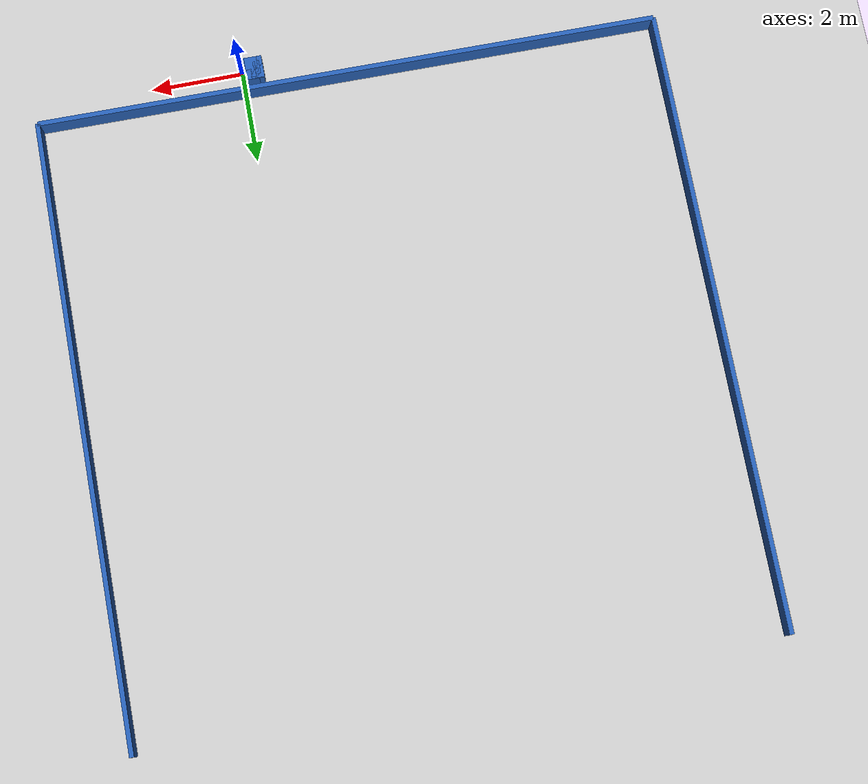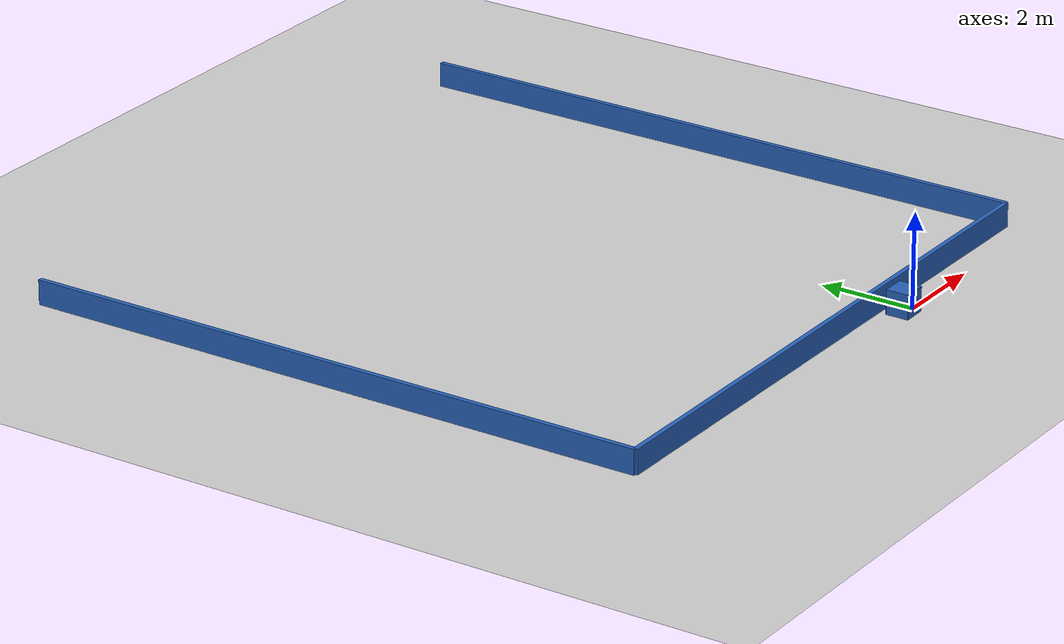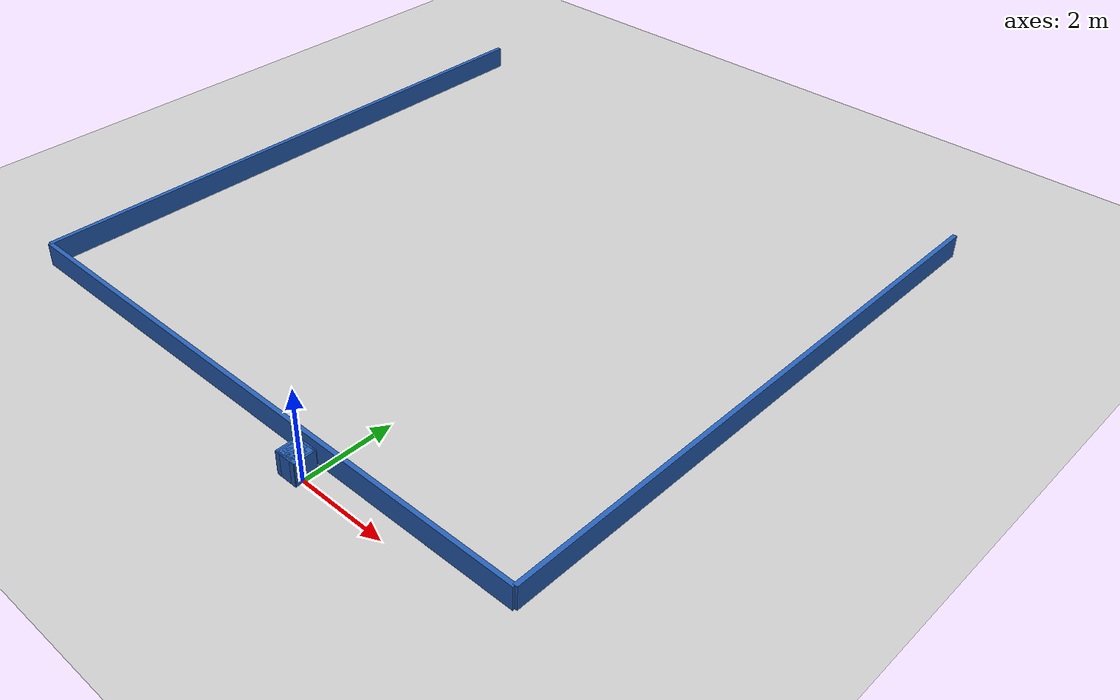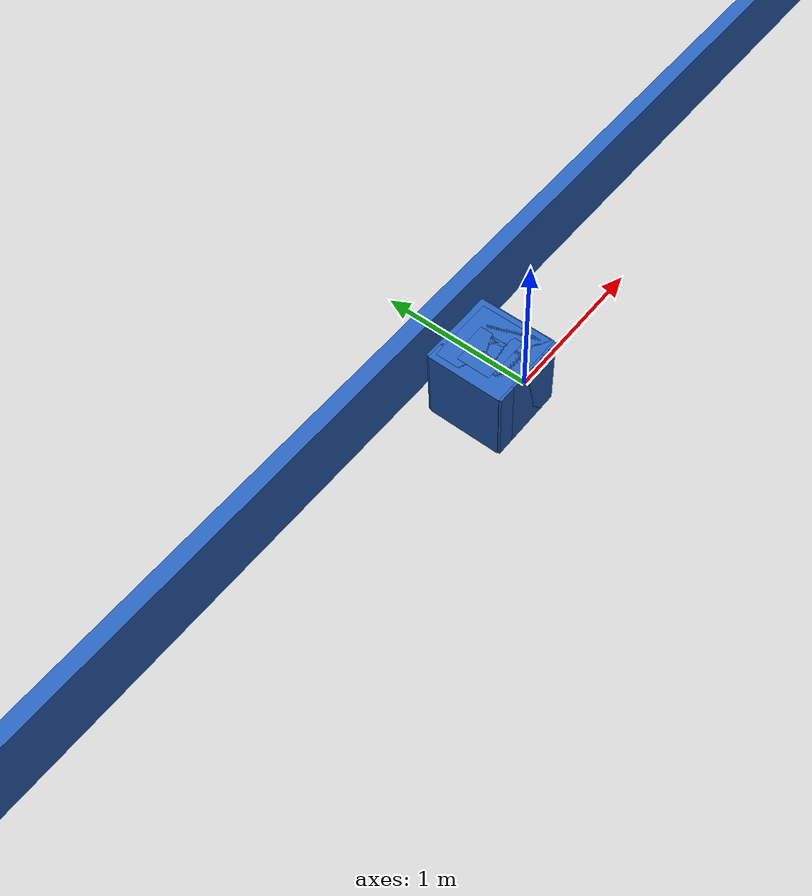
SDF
<?xml version="1.0" ?>
    <sdf version="1.5">
      <world name="default">
        <!-- A global light source -->
        <include>
          <uri>model://sun</uri>
        </include>
        <!-- A ground plane -->
        <include>
          <uri>model://ground_plane</uri>
        </include>

    <model name='libopen_space_final_T2B_111_18'>
      <static>1</static>
      <pose frame=''>-0.225000 0.075000 0.000000 0.000000 0.000000 0.000000</pose>
      <link name='link'>
        <inertial>
          <mass>1</mass>
          <inertia>
            <ixx>0.145833</ixx>
            <ixy>0</ixy>
            <ixz>0</ixz>
            <iyy>0.145833</iyy>
            <iyz>0</iyz>
            <izz>0.125</izz>
          </inertia>
        </inertial>
        <collision name='collision'>
          <geometry>
            <box>
              <size>0.42 0.43 1</size>
            </box>
          </geometry>
          <max_contacts>10</max_contacts>
          <surface>
            <contact>
              <ode/>
            </contact>
            <bounce/>
            <friction>
              <torsional>
                <ode/>
              </torsional>
              <ode/>
            </friction>
          </surface>
        </collision>
        <visual name='visual'>
          <geometry>
            <box>
              <size>0.42 0.43 1</size>
            </box>
          </geometry>
	    <material>
              <ambient>0.152000 0.379000 0.720000 1</ambient>
	      <diffuse>0.152000 0.379000 0.720000 1</diffuse>
          </material>
          <material>
            <script>
              <name>Gazebo/Grey</name>
              <uri>file://media/materials/scripts/gazebo.material</uri>
            </script>
          </material>
        </visual>
        <self_collide>0</self_collide>
        <kinematic>0</kinematic>
        <gravity>1</gravity>
      </link>
      <plugin name='libopen_space_final_T2B_111_18' filename='libopen_space_final_T2B_111_18.so'/>
    </model>

    <model name='libopen_space_final_T2B_120_45'>
      <static>1</static>
      <pose frame=''>-0.225000 0.075000 0.000000 0.000000 0.000000 0.000000</pose>
      <link name='link'>
        <inertial>
          <mass>1</mass>
          <inertia>
            <ixx>0.145833</ixx>
            <ixy>0</ixy>
            <ixz>0</ixz>
            <iyy>0.145833</iyy>
            <iyz>0</iyz>
            <izz>0.125</izz>
          </inertia>
        </inertial>
        <collision name='collision'>
          <geometry>
            <box>
              <size>0.17 0.27 1</size>
            </box>
          </geometry>
          <max_contacts>10</max_contacts>
          <surface>
            <contact>
              <ode/>
            </contact>
            <bounce/>
            <friction>
              <torsional>
                <ode/>
              </torsional>
              <ode/>
            </friction>
          </surface>
        </collision>
        <visual name='visual'>
          <geometry>
            <box>
              <size>0.17 0.27 1</size>
            </box>
          </geometry>
	    <material>
              <ambient>0.152000 0.379000 0.720000 1</ambient>
	      <diffuse>0.152000 0.379000 0.720000 1</diffuse>
          </material>
          <material>
            <script>
              <name>Gazebo/Grey</name>
              <uri>file://media/materials/scripts/gazebo.material</uri>
            </script>
          </material>
        </visual>
        <self_collide>0</self_collide>
        <kinematic>0</kinematic>
        <gravity>1</gravity>
      </link>
      <plugin name='libopen_space_final_T2B_120_45' filename='libopen_space_final_T2B_120_45.so'/>
    </model>

    <model name='libopen_space_final_T2B_80_70'>
      <static>1</static>
      <pose frame=''>-0.225000 0.075000 0.000000 0.000000 0.000000 0.000000</pose>
      <link name='link'>
        <inertial>
          <mass>1</mass>
          <inertia>
            <ixx>0.145833</ixx>
            <ixy>0</ixy>
            <ixz>0</ixz>
            <iyy>0.145833</iyy>
            <iyz>0</iyz>
            <izz>0.125</izz>
          </inertia>
        </inertial>
        <collision name='collision'>
          <geometry>
            <box>
              <size>0.14 0.40 1</size>
            </box>
          </geometry>
          <max_contacts>10</max_contacts>
          <surface>
            <contact>
              <ode/>
            </contact>
            <bounce/>
            <friction>
              <torsional>
                <ode/>
              </torsional>
              <ode/>
            </friction>
          </surface>
        </collision>
        <visual name='visual'>
          <geometry>
            <box>
              <size>0.14 0.40 1</size>
            </box>
          </geometry>
	    <material>
              <ambient>0.152000 0.379000 0.720000 1</ambient>
	      <diffuse>0.152000 0.379000 0.720000 1</diffuse>
          </material>
          <material>
            <script>
              <name>Gazebo/Grey</name>
              <uri>file://media/materials/scripts/gazebo.material</uri>
            </script>
          </material>
        </visual>
        <self_collide>0</self_collide>
        <kinematic>0</kinematic>
        <gravity>1</gravity>
      </link>
      <plugin name='libopen_space_final_T2B_80_70' filename='libopen_space_final_T2B_80_70.so'/>
    </model>

    <model name='libopen_space_final_T2B_109_60'>
      <static>1</static>
      <pose frame=''>-0.225000 0.075000 0.000000 0.000000 0.000000 0.000000</pose>
      <link name='link'>
        <inertial>
          <mass>1</mass>
          <inertia>
            <ixx>0.145833</ixx>
            <ixy>0</ixy>
            <ixz>0</ixz>
            <iyy>0.145833</iyy>
            <iyz>0</iyz>
            <izz>0.125</izz>
          </inertia>
        </inertial>
        <collision name='collision'>
          <geometry>
            <box>
              <size>0.50 0.47 1</size>
            </box>
          </geometry>
          <max_contacts>10</max_contacts>
          <surface>
            <contact>
              <ode/>
            </contact>
            <bounce/>
            <friction>
              <torsional>
                <ode/>
              </torsional>
              <ode/>
            </friction>
          </surface>
        </collision>
        <visual name='visual'>
          <geometry>
            <box>
              <size>0.50 0.47 1</size>
            </box>
          </geometry>
	    <material>
              <ambient>0.152000 0.379000 0.720000 1</ambient>
	      <diffuse>0.152000 0.379000 0.720000 1</diffuse>
          </material>
          <material>
            <script>
              <name>Gazebo/Grey</name>
              <uri>file://media/materials/scripts/gazebo.material</uri>
            </script>
          </material>
        </visual>
        <self_collide>0</self_collide>
        <kinematic>0</kinematic>
        <gravity>1</gravity>
      </link>
      <plugin name='libopen_space_final_T2B_109_60' filename='libopen_space_final_T2B_109_60.so'/>
    </model>

    <model name='libopen_space_final_T2B_105_8'>
      <static>1</static>
      <pose frame=''>-0.225000 0.075000 0.000000 0.000000 0.000000 0.000000</pose>
      <link name='link'>
        <inertial>
          <mass>1</mass>
          <inertia>
            <ixx>0.145833</ixx>
            <ixy>0</ixy>
            <ixz>0</ixz>
            <iyy>0.145833</iyy>
            <iyz>0</iyz>
            <izz>0.125</izz>
          </inertia>
        </inertial>
        <collision name='collision'>
          <geometry>
            <box>
              <size>0.27 0.50 1</size>
            </box>
          </geometry>
          <max_contacts>10</max_contacts>
          <surface>
            <contact>
              <ode/>
            </contact>
            <bounce/>
            <friction>
              <torsional>
                <ode/>
              </torsional>
              <ode/>
            </friction>
          </surface>
        </collision>
        <visual name='visual'>
          <geometry>
            <box>
              <size>0.27 0.50 1</size>
            </box>
          </geometry>
	    <material>
              <ambient>0.152000 0.379000 0.720000 1</ambient>
	      <diffuse>0.152000 0.379000 0.720000 1</diffuse>
          </material>
          <material>
            <script>
              <name>Gazebo/Grey</name>
              <uri>file://media/materials/scripts/gazebo.material</uri>
            </script>
          </material>
        </visual>
        <self_collide>0</self_collide>
        <kinematic>0</kinematic>
        <gravity>1</gravity>
      </link>
      <plugin name='libopen_space_final_T2B_105_8' filename='libopen_space_final_T2B_105_8.so'/>
    </model>

    <model name='libopen_space_final_T2B_123_20'>
      <static>1</static>
      <pose frame=''>-0.225000 0.075000 0.000000 0.000000 0.000000 0.000000</pose>
      <link name='link'>
        <inertial>
          <mass>1</mass>
          <inertia>
            <ixx>0.145833</ixx>
            <ixy>0</ixy>
            <ixz>0</ixz>
            <iyy>0.145833</iyy>
            <iyz>0</iyz>
            <izz>0.125</izz>
          </inertia>
        </inertial>
        <collision name='collision'>
          <geometry>
            <box>
              <size>0.49 0.50 1</size>
            </box>
          </geometry>
          <max_contacts>10</max_contacts>
          <surface>
            <contact>
              <ode/>
            </contact>
            <bounce/>
            <friction>
              <torsional>
                <ode/>
              </torsional>
              <ode/>
            </friction>
          </surface>
        </collision>
        <visual name='visual'>
          <geometry>
            <box>
              <size>0.49 0.50 1</size>
            </box>
          </geometry>
	    <material>
              <ambient>0.152000 0.379000 0.720000 1</ambient>
	      <diffuse>0.152000 0.379000 0.720000 1</diffuse>
          </material>
          <material>
            <script>
              <name>Gazebo/Grey</name>
              <uri>file://media/materials/scripts/gazebo.material</uri>
            </script>
          </material>
        </visual>
        <self_collide>0</self_collide>
        <kinematic>0</kinematic>
        <gravity>1</gravity>
      </link>
      <plugin name='libopen_space_final_T2B_123_20' filename='libopen_space_final_T2B_123_20.so'/>
    </model>

    <model name='libopen_space_final_T2B_115_72'>
      <static>1</static>
      <pose frame=''>-0.225000 0.075000 0.000000 0.000000 0.000000 0.000000</pose>
      <link name='link'>
        <inertial>
          <mass>1</mass>
          <inertia>
            <ixx>0.145833</ixx>
            <ixy>0</ixy>
            <ixz>0</ixz>
            <iyy>0.145833</iyy>
            <iyz>0</iyz>
            <izz>0.125</izz>
          </inertia>
        </inertial>
        <collision name='collision'>
          <geometry>
            <box>
              <size>0.33 0.21 1</size>
            </box>
          </geometry>
          <max_contacts>10</max_contacts>
          <surface>
            <contact>
              <ode/>
            </contact>
            <bounce/>
            <friction>
              <torsional>
                <ode/>
              </torsional>
              <ode/>
            </friction>
          </surface>
        </collision>
        <visual name='visual'>
          <geometry>
            <box>
              <size>0.33 0.21 1</size>
            </box>
          </geometry>
	    <material>
              <ambient>0.152000 0.379000 0.720000 1</ambient>
	      <diffuse>0.152000 0.379000 0.720000 1</diffuse>
          </material>
          <material>
            <script>
              <name>Gazebo/Grey</name>
              <uri>file://media/materials/scripts/gazebo.material</uri>
            </script>
          </material>
        </visual>
        <self_collide>0</self_collide>
        <kinematic>0</kinematic>
        <gravity>1</gravity>
      </link>
      <plugin name='libopen_space_final_T2B_115_72' filename='libopen_space_final_T2B_115_72.so'/>
    </model>

    <model name='libopen_space_final_T2B_91_57'>
      <static>1</static>
      <pose frame=''>-0.225000 0.075000 0.000000 0.000000 0.000000 0.000000</pose>
      <link name='link'>
        <inertial>
          <mass>1</mass>
          <inertia>
            <ixx>0.145833</ixx>
            <ixy>0</ixy>
            <ixz>0</ixz>
            <iyy>0.145833</iyy>
            <iyz>0</iyz>
            <izz>0.125</izz>
          </inertia>
        </inertial>
        <collision name='collision'>
          <geometry>
            <box>
              <size>0.35 0.30 1</size>
            </box>
          </geometry>
          <max_contacts>10</max_contacts>
          <surface>
            <contact>
              <ode/>
            </contact>
            <bounce/>
            <friction>
              <torsional>
                <ode/>
              </torsional>
              <ode/>
            </friction>
          </surface>
        </collision>
        <visual name='visual'>
          <geometry>
            <box>
              <size>0.35 0.30 1</size>
            </box>
          </geometry>
	    <material>
              <ambient>0.152000 0.379000 0.720000 1</ambient>
	      <diffuse>0.152000 0.379000 0.720000 1</diffuse>
          </material>
          <material>
            <script>
              <name>Gazebo/Grey</name>
              <uri>file://media/materials/scripts/gazebo.material</uri>
            </script>
          </material>
        </visual>
        <self_collide>0</self_collide>
        <kinematic>0</kinematic>
        <gravity>1</gravity>
      </link>
      <plugin name='libopen_space_final_T2B_91_57' filename='libopen_space_final_T2B_91_57.so'/>
    </model>

    <model name='libopen_space_final_T2B_129_92'>
      <static>1</static>
      <pose frame=''>-0.225000 0.075000 0.000000 0.000000 0.000000 0.000000</pose>
      <link name='link'>
        <inertial>
          <mass>1</mass>
          <inertia>
            <ixx>0.145833</ixx>
            <ixy>0</ixy>
            <ixz>0</ixz>
            <iyy>0.145833</iyy>
            <iyz>0</iyz>
            <izz>0.125</izz>
          </inertia>
        </inertial>
        <collision name='collision'>
          <geometry>
            <box>
              <size>0.12 0.40 1</size>
            </box>
          </geometry>
          <max_contacts>10</max_contacts>
          <surface>
            <contact>
              <ode/>
            </contact>
            <bounce/>
            <friction>
              <torsional>
                <ode/>
              </torsional>
              <ode/>
            </friction>
          </surface>
        </collision>
        <visual name='visual'>
          <geometry>
            <box>
              <size>0.12 0.40 1</size>
            </box>
          </geometry>
	    <material>
              <ambient>0.152000 0.379000 0.720000 1</ambient>
	      <diffuse>0.152000 0.379000 0.720000 1</diffuse>
          </material>
          <material>
            <script>
              <name>Gazebo/Grey</name>
              <uri>file://media/materials/scripts/gazebo.material</uri>
            </script>
          </material>
        </visual>
        <self_collide>0</self_collide>
        <kinematic>0</kinematic>
        <gravity>1</gravity>
      </link>
      <plugin name='libopen_space_final_T2B_129_92' filename='libopen_space_final_T2B_129_92.so'/>
    </model>

    <model name='libopen_space_final_T2B_57_10'>
      <static>1</static>
      <pose frame=''>-0.225000 0.075000 0.000000 0.000000 0.000000 0.000000</pose>
      <link name='link'>
        <inertial>
          <mass>1</mass>
          <inertia>
            <ixx>0.145833</ixx>
            <ixy>0</ixy>
            <ixz>0</ixz>
            <iyy>0.145833</iyy>
            <iyz>0</iyz>
            <izz>0.125</izz>
          </inertia>
        </inertial>
        <collision name='collision'>
          <geometry>
            <box>
              <size>0.27 0.22 1</size>
            </box>
          </geometry>
          <max_contacts>10</max_contacts>
          <surface>
            <contact>
              <ode/>
            </contact>
            <bounce/>
            <friction>
              <torsional>
                <ode/>
              </torsional>
              <ode/>
            </friction>
          </surface>
        </collision>
        <visual name='visual'>
          <geometry>
            <box>
              <size>0.27 0.22 1</size>
            </box>
          </geometry>
	    <material>
              <ambient>0.152000 0.379000 0.720000 1</ambient>
	      <diffuse>0.152000 0.379000 0.720000 1</diffuse>
          </material>
          <material>
            <script>
              <name>Gazebo/Grey</name>
              <uri>file://media/materials/scripts/gazebo.material</uri>
            </script>
          </material>
        </visual>
        <self_collide>0</self_collide>
        <kinematic>0</kinematic>
        <gravity>1</gravity>
      </link>
      <plugin name='libopen_space_final_T2B_57_10' filename='libopen_space_final_T2B_57_10.so'/>
    </model>

        <model name='bottom_wall'>
          <static>1</static>
          <pose frame=''>-2.25 0.5 0.000000 0.000000 0.000000 1.57079632</pose>
          <link name='link'>
            <inertial>
            <mass>1</mass>
            <inertia>
              <ixx>0.145833</ixx>
              <ixy>0</ixy>
              <ixz>0</ixz>
              <iyy>0.145833</iyy>
              <iyz>0</iyz>
              <izz>0.125</izz>
            </inertia>
            </inertial>
            <collision name='collision'>
            <geometry>
              <box>
              <size>0.1 13.5 1</size>
              </box>
            </geometry>
            <max_contacts>10</max_contacts>
            <surface>
              <contact>
              <ode/>
              </contact>
              <bounce/>
              <friction>
              <torsional>
                <ode/>
              </torsional>
              <ode/>
              </friction>
            </surface>
            </collision>
            <visual name='visual'>
            <geometry>
              <box>
              <size>0.1 13.5 1</size>
              </box>
            </geometry>
            <material>
              <ambient>0.152000 0.379000 0.720000 1</ambient>
            <diffuse>0.152000 0.379000 0.720000 1</diffuse>
            </material>
            <material>
              <script>
              <name>Gazebo/Grey</name>
              <uri>file://media/materials/scripts/gazebo.material</uri>
              </script>
            </material>
            </visual>
            <self_collide>0</self_collide>
            <kinematic>0</kinematic>
            <gravity>1</gravity>
          </link>
        </model>

        <model name='left_wall'>
          <static>1</static>
          <pose frame=''>-9 7.25 0.000000 0.000000 0.000000 0.000000</pose>
          <link name='link'>
            <inertial>
            <mass>1</mass>
            <inertia>
              <ixx>0.145833</ixx>
              <ixy>0</ixy>
              <ixz>0</ixz>
              <iyy>0.145833</iyy>
              <iyz>0</iyz>
              <izz>0.125</izz>
            </inertia>
            </inertial>
            <collision name='collision'>
            <geometry>
              <box>
              <size>0.1 13.5 1</size>
              </box>
            </geometry>
            <max_contacts>10</max_contacts>
            <surface>
              <contact>
              <ode/>
              </contact>
              <bounce/>
              <friction>
              <torsional>
                <ode/>
              </torsional>
              <ode/>
              </friction>
            </surface>
            </collision>
            <visual name='visual'>
            <geometry>
              <box>
              <size>0.1 13.5 1</size>
              </box>
            </geometry>
            <material>
              <ambient>0.152000 0.379000 0.720000 1</ambient>
            <diffuse>0.152000 0.379000 0.720000 1</diffuse>
            </material>
            <material>
              <script>
              <name>Gazebo/Grey</name>
              <uri>file://media/materials/scripts/gazebo.material</uri>
              </script>
            </material>
            </visual>
            <self_collide>0</self_collide>
            <kinematic>0</kinematic>
            <gravity>1</gravity>
          </link>
        </model>

        <model name='right_wall'>
          <static>1</static>
          <pose frame=''>4.5 7.25 0.000000 0.000000 0.000000 0.000000</pose>
          <link name='link'>
            <inertial>
            <mass>1</mass>
            <inertia>
              <ixx>0.145833</ixx>
              <ixy>0</ixy>
              <ixz>0</ixz>
              <iyy>0.145833</iyy>
              <iyz>0</iyz>
              <izz>0.125</izz>
            </inertia>
            </inertial>
            <collision name='collision'>
            <geometry>
              <box>
              <size>0.1 13.5 1</size>
              </box>
            </geometry>
            <max_contacts>10</max_contacts>
            <surface>
              <contact>
              <ode/>
              </contact>
              <bounce/>
              <friction>
              <torsional>
                <ode/>
              </torsional>
              <ode/>
              </friction>
            </surface>
            </collision>
            <visual name='visual'>
            <geometry>
              <box>
              <size>0.1 13.5 1</size>
              </box>
            </geometry>
            <material>
              <ambient>0.152000 0.379000 0.720000 1</ambient>
            <diffuse>0.152000 0.379000 0.720000 1</diffuse>
            </material>
            <material>
              <script>
              <name>Gazebo/Grey</name>
              <uri>file://media/materials/scripts/gazebo.material</uri>
              </script>
            </material>
            </visual>
            <self_collide>0</self_collide>
            <kinematic>0</kinematic>
            <gravity>1</gravity>
          </link>
        </model>

      </world>
    </sdf>"
